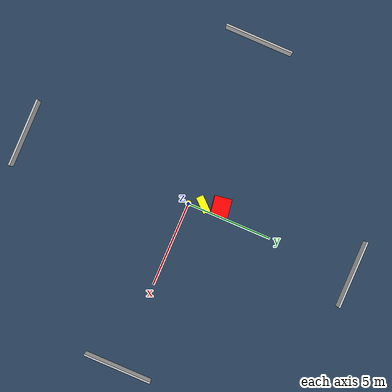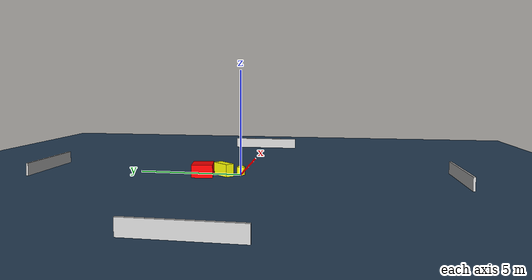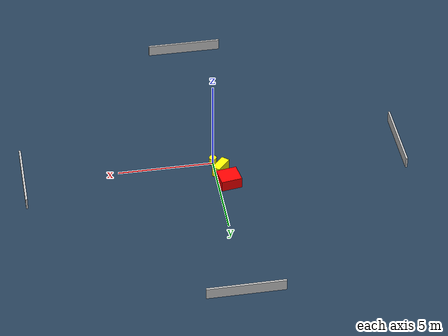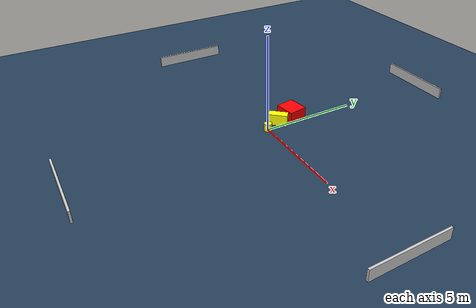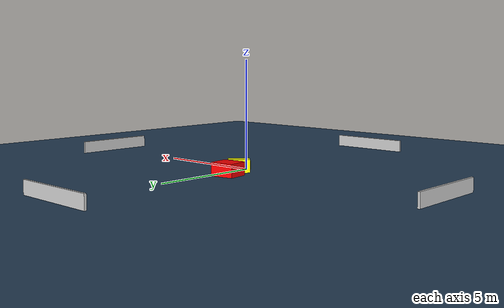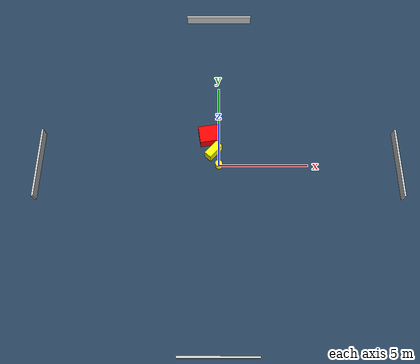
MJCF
<?xml version="1.0" ?>
<mujoco model="generated_environment">
  <option timestep="0.01" integrator="RK4" cone="elliptic"/>
  <default>
    <geom density="1"/>
  </default>
  <asset>
    <texture builtin="gradient" height="3072" name="skybox" rgb1="0.3 0.5 0.7" rgb2="0 0 0" type="skybox" width="512"/>
    <texture builtin="checker" height="300" name="groundplane" rgb1="0.2 0.3 0.4" rgb2="0.1 0.2 0.3" type="2d" width="300"/>
    <material name="groundplane" reflectance="0.2" texrepeat="5 5" texture="groundplane"/>
  </asset>
  <worldbody>
    <light dir="0 0 -1" directional="true" pos="0 0 1.5"/>
    <geom condim="3" friction="0.5 0.005 0.001" material="groundplane" name="floor" pos="0 0 0" size="0 0 0.05" type="plane"/>
    <body name="walls">
      <geom name="wall_1" condim="4" pos="-10.0 0.0 0.3" rgba="0.800000011920929 0.800000011920929 0.800000011920929 1.0" size="0.05 2.0 0.3" type="box"/>
      <geom name="wall_2" condim="4" pos="10.0 0.0 0.3" rgba="0.800000011920929 0.800000011920929 0.800000011920929 1.0" size="0.05 2.0 0.3" type="box"/>
      <geom name="wall_3" condim="4" pos="0.0 -10.0 0.3" rgba="0.800000011920929 0.800000011920929 0.800000011920929 1.0" size="2.0 0.05 0.3" type="box"/>
      <geom name="wall_4" condim="4" pos="0.0 10.0 0.3" rgba="0.800000011920929 0.800000011920929 0.800000011920929 1.0" size="2.0 0.05 0.3" type="box"/>
    </body>
    <body name="robot">
      <joint name="joint_x" type="slide" pos="0 0 0" axis="1 0 0"/>
      <joint name="joint_y" type="slide" pos="0 0 0" axis="0 1 0"/>
      <geom name="robot" type="cylinder" pos="0.0 0.0 0.2" size="0.2 0.2 0.0" mass="5.0" friction="1.0 0.005 0.0001" condim="4" rgba="1.0 1.0 0.0 1.0"/>
    </body>
    <body name="obstacle_1_movable">
      <geom name="obstacle_1_movable" condim="4" pos="-0.2878976949990805 0.7784225852262796 0.3" euler="0 0 317.57044780000604" friction="0.0 0.005 0.001" rgba="1.0 1.0 0.0 1.0" size="0.21858119727961228 0.4914841257624774 0.3" type="box" mass="0.1"/>
      <joint type="free"/>
    </body>
    <body name="obstacle_2_static">
      <geom name="obstacle_2_static" condim="4" pos="-0.5591328225497919 1.7480829136812817 0.3" euler="0 0 98.90236679511077" friction="0.0 0.005 0.001" rgba="1.0 0.0 0.0 1.0" size="0.4936262019404782 0.5497017102125984 0.3" type="box"/>
    </body>
  </worldbody>
  <actuator>
    <motor name="actuator_x" joint="joint_x" gear="1" ctrlrange="-1 1"/>
    <motor name="actuator_y" joint="joint_y" gear="1" ctrlrange="-1 1"/>
  </actuator>
</mujoco>
